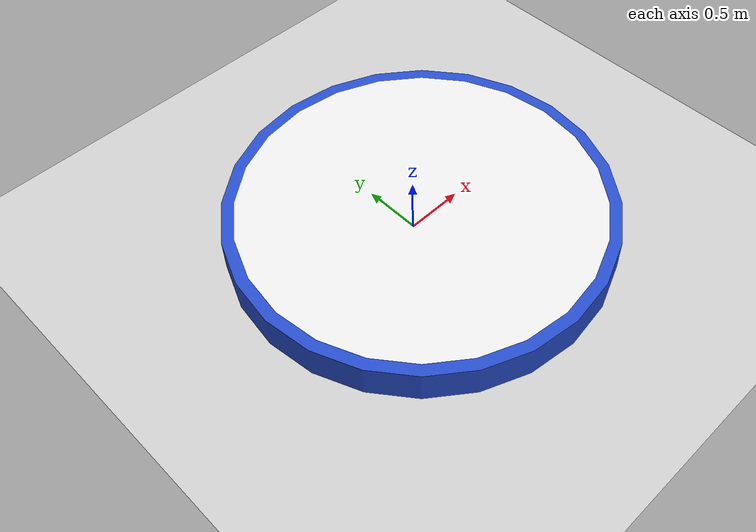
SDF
<sdf version="1.6">
 <world name="default">
  <scene><ambient>0.4 0.4 0.4 1</ambient><background>0.7 0.7 0.7 1</background><shadows>1</shadows></scene>
  <light name="sun" type="directional">
   <pose>0 0 10 0 -0 0</pose>
   <diffuse>0.8 0.8 0.8 1</diffuse>
   <specular>0.2 0.2 0.2 1</specular>
   <attenuation>
    <range>1000</range>
    <constant>0.9</constant>
    <linear>0.01</linear>
    <quadratic>0.001</quadratic>
   </attenuation>
   <direction>-0.5 0.1 -0.9</direction>
  </light>
  <model name="ground_plane">
   <static>1</static>
   <link name="link">
    <collision name="collision">
     <geometry><plane><normal>0 0 1</normal><size>100 100</size></plane></geometry>
     <surface>
      <contact><collide_bitmask>65535</collide_bitmask></contact>
      <friction><ode><mu>100</mu><mu2>50</mu2></ode></friction>
     </surface>
    </collision>
    <visual name="visual">
     <cast_shadows>0</cast_shadows>
     <geometry><plane><normal>0 0 1</normal><size>100 100</size></plane></geometry>
     <material>
      <script><uri>file://media/materials/scripts/gazebo.material</uri><name>Gazebo/Grey</name></script>
     </material>
    </visual>
   </link>
  </model>
  <physics name="default_physics" default="0" type="ode">
   <real_time_update_rate>0</real_time_update_rate>
   <max_step_size>0.001</max_step_size>
   <real_time_factor>1</real_time_factor>
   <ode>
    <solver>
     <type>quick</type>
     <iters>150</iters>
     <precon_iters>0</precon_iters>
     <sor>1.4</sor>
     <use_dynamic_moi_rescaling>1</use_dynamic_moi_rescaling>
    </solver>
    <constraints>
     <cfm>1e-05</cfm>
     <erp>0.2</erp>
     <contact_max_correcting_vel>2000</contact_max_correcting_vel>
     <contact_surface_layer>0.01</contact_surface_layer>
    </constraints>
   </ode>
  </physics>
  <gravity>0 0 -9.8</gravity>
  <magnetic_field>6e-06 2.3e-05 -4.2e-05</magnetic_field>
  <atmosphere type="adiabatic"/>
  <audio><device>default</device></audio>
  <spherical_coordinates>
   <surface_model>EARTH_WGS84</surface_model>
   <latitude_deg>0</latitude_deg>
   <longitude_deg>0</longitude_deg>
   <elevation>0</elevation>
   <heading_deg>0</heading_deg>
  </spherical_coordinates>
  <model name="arena">
   <link name="link">
    <inertial>
     <mass>300</mass>
     <inertia><ixx>89.8816</ixx><ixy>0</ixy><ixz>0</ixz><iyy>89.8816</iyy><iyz>0</iyz><izz>175.878</izz></inertia>
    </inertial>
    <visual name="visual">
     <geometry><cylinder><radius>1.5</radius><length>0.3</length></cylinder></geometry>
     <material>
      <script><name>Gazebo/White</name><uri>file://media/materials/scripts/gazebo.material</uri></script>
      <shader type="vertex"><normal_map>__default__</normal_map></shader>
      <ambient>1 1 1 1</ambient>
      <diffuse>1 1 1 1</diffuse>
      <specular>0 0 0 1</specular>
      <emissive>0 0 0 1</emissive>
     </material>
    </visual>
    <collision name="collision">
     <geometry><cylinder><radius>1.6</radius><length>0.3</length></cylinder></geometry>
     <surface>
      <friction>
       <ode><mu>10</mu><mu2>10</mu2><fdir1>0 0 0</fdir1><slip1>0</slip1><slip2>0</slip2></ode>
       <torsional>
        <coefficient>1</coefficient>
        <patch_radius>0</patch_radius>
        <surface_radius>0</surface_radius>
        <use_patch_radius>1</use_patch_radius>
        <ode><slip>0</slip></ode>
       </torsional>
      </friction>
      <bounce><restitution_coefficient>0</restitution_coefficient><threshold>1e+06</threshold></bounce>
      <contact>
       <collide_without_contact>0</collide_without_contact>
       <collide_without_contact_bitmask>1</collide_without_contact_bitmask>
       <collide_bitmask>1</collide_bitmask>
       <ode>
        <soft_cfm>0</soft_cfm>
        <soft_erp>0.2</soft_erp>
        <kp>1e+13</kp>
        <kd>1</kd>
        <max_vel>0.01</max_vel>
        <min_depth>0</min_depth>
       </ode>
       <bullet>
        <split_impulse>1</split_impulse>
        <split_impulse_penetration_threshold>-0.01</split_impulse_penetration_threshold>
        <soft_cfm>0</soft_cfm>
        <soft_erp>0.2</soft_erp>
        <kp>1e+13</kp>
        <kd>1</kd>
       </bullet>
      </contact>
     </surface>
    </collision>
   </link>
   <link name="link_1">
    <inertial>
     <mass>1000</mass>
     <inertia><ixx>14.5833</ixx><ixy>0</ixy><ixz>0</ixz><iyy>14.5833</iyy><iyz>0</iyz><izz>12.5</izz></inertia>
    </inertial>
    <visual name="visual">
     <geometry><cylinder><radius>1.6</radius><length>0.299</length></cylinder></geometry>
     <material>
      <lighting>1</lighting>
      <script><uri>file://media/materials/scripts/gazebo.material</uri><name>Gazebo/Blue</name></script>
      <shader type="vertex"><normal_map>__default__</normal_map></shader>
      <ambient>0 0 1 1</ambient>
      <diffuse>0 0 1 1</diffuse>
      <specular>0 0 0 1</specular>
      <emissive>0 0 0 1</emissive>
     </material>
    </visual>
    <collision name="collision_0">
     <geometry><cylinder><radius>1.6</radius><length>0.299</length></cylinder></geometry>
     <surface>
      <friction>
       <ode><mu>1</mu><mu2>1</mu2><fdir1>0 0 0</fdir1><slip1>0</slip1><slip2>0</slip2></ode>
       <torsional>
        <coefficient>1</coefficient>
        <patch_radius>0</patch_radius>
        <surface_radius>0</surface_radius>
        <use_patch_radius>1</use_patch_radius>
        <ode><slip>0</slip></ode>
       </torsional>
      </friction>
      <bounce><restitution_coefficient>0</restitution_coefficient><threshold>1e+06</threshold></bounce>
      <contact>
       <collide_without_contact>0</collide_without_contact>
       <collide_without_contact_bitmask>1</collide_without_contact_bitmask>
       <collide_bitmask>1</collide_bitmask>
       <ode>
        <soft_cfm>0</soft_cfm>
        <soft_erp>0.2</soft_erp>
        <kp>1e+13</kp>
        <kd>1</kd>
        <max_vel>0.01</max_vel>
        <min_depth>0</min_depth>
       </ode>
       <bullet>
        <split_impulse>1</split_impulse>
        <split_impulse_penetration_threshold>-0.01</split_impulse_penetration_threshold>
        <soft_cfm>0</soft_cfm>
        <soft_erp>0.2</soft_erp>
        <kp>1e+13</kp>
        <kd>1</kd>
       </bullet>
      </contact>
     </surface>
    </collision>
   </link>
   <static>0</static>
   <pose>0.041707 -0.057044 0.149997 2e-06 -2e-06 -0</pose>
  </model>
 </world>
</sdf>
